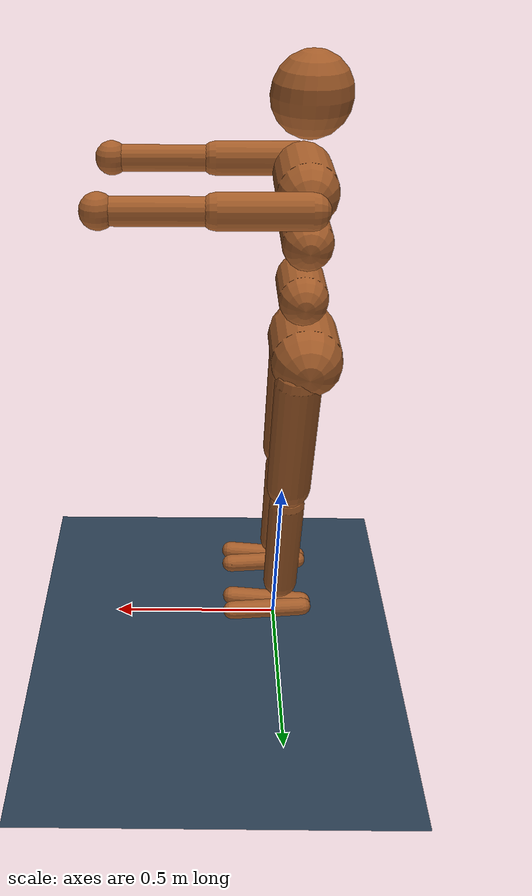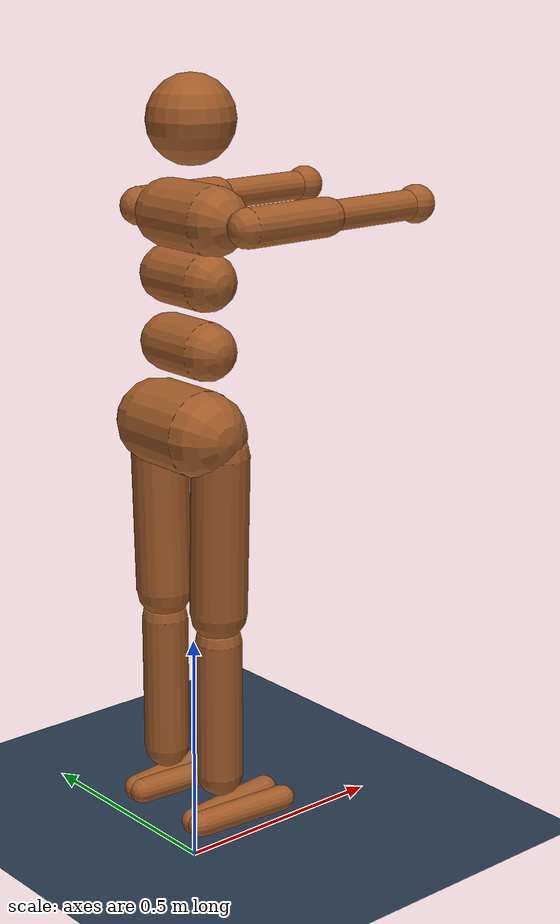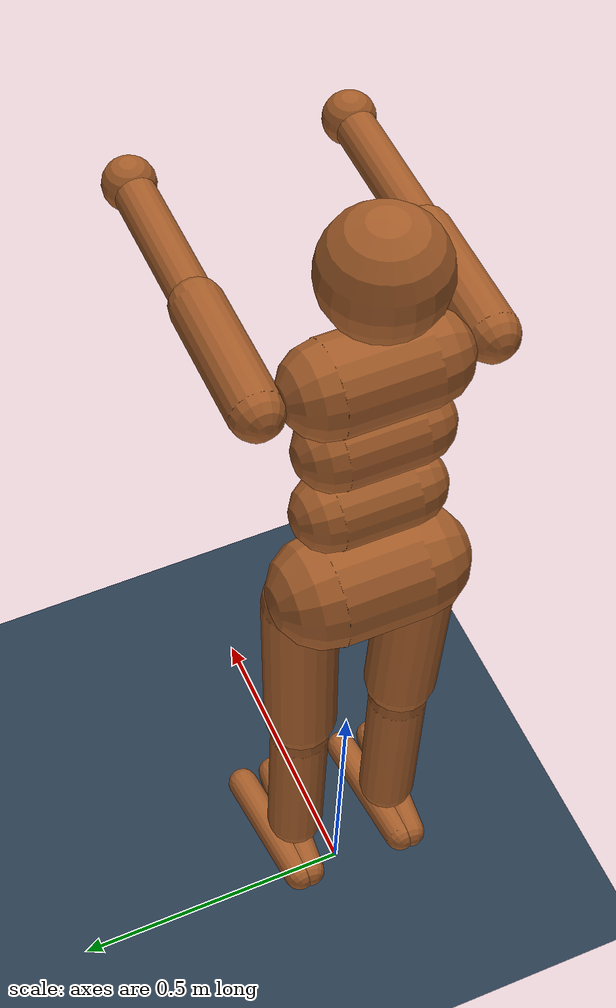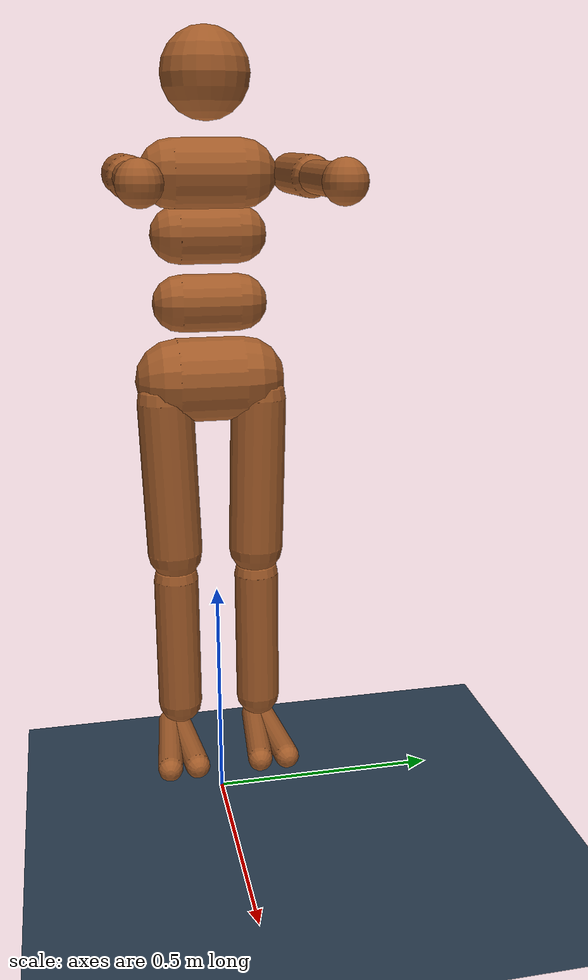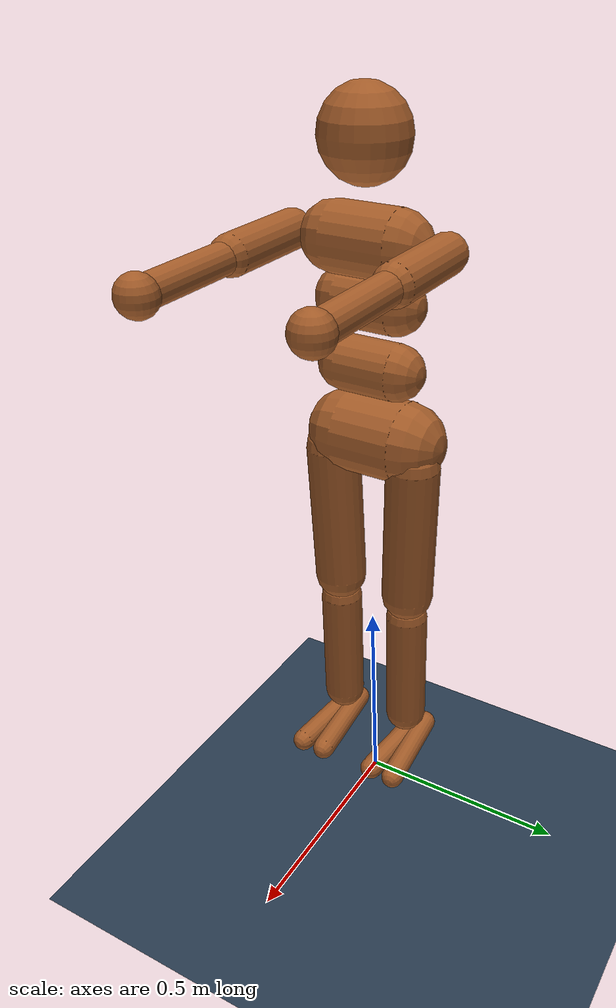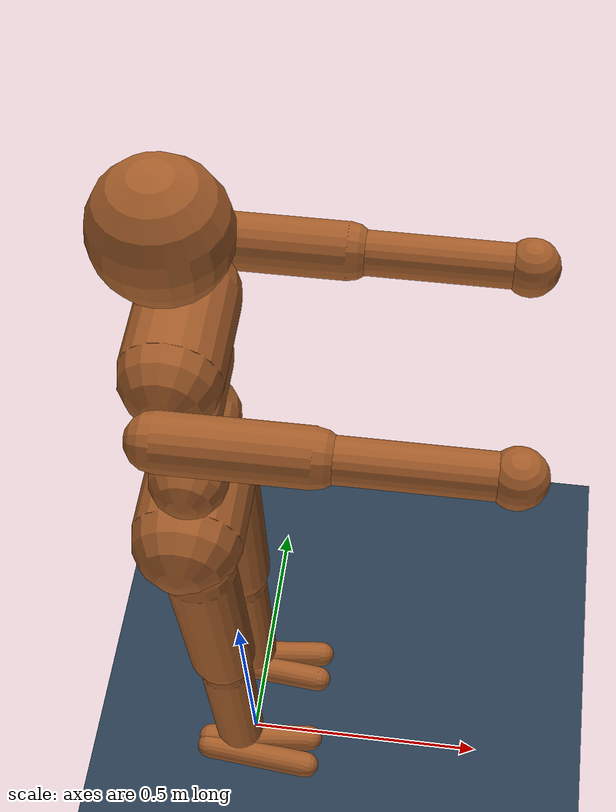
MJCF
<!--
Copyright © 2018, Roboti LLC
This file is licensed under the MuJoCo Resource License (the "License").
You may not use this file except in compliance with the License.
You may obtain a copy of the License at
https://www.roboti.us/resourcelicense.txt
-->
<mujoco model="Humanoid">

    <compiler inertiafromgeom="true" angle="degree"/>

    <default>
        <joint limited="true" damping="1" armature="0"/>
        <geom condim="1" material="matgeom"/>
        <motor ctrlrange="-.4 .4" ctrllimited="true"/>
    </default>

    <option timestep="0.005" iterations="50" tolerance="1e-10" solver="Newton" jacobian="dense" cone="pyramidal" gravity="0 0 0"/>

    <size nconmax="50" njmax="200" nstack="10000"/>

    <visual>
        <map force="0.1" zfar="30"/>
        <rgba haze="0.15 0.25 0.35 1"/>
        <quality shadowsize="2048"/>
        <global offwidth="800" offheight="800"/>
    </visual>

    <asset>
        <texture type="skybox" builtin="gradient" rgb1="0.3 0.5 0.7" rgb2="0 0 0" width="512" height="512"/>

        <texture name="texplane" type="2d" builtin="checker" rgb1=".2 .3 .4" rgb2=".1 0.15 0.2" width="512" height="512" mark="cross" markrgb=".8 .8 .8"/>

        <texture name="texgeom" type="cube" builtin="flat" mark="cross" width="127" height="1278"
            rgb1="0.8 0.6 0.4" rgb2="0.8 0.6 0.4" markrgb="1 1 1" random="0.01"/>

        <material name="matplane" reflectance="0.3" texture="texplane" texrepeat="1 1" texuniform="true"/>

        <material name="matgeom" texture="texgeom" texuniform="true" rgba="0.8 0.6 .4 1"/>
    </asset>

    <worldbody>
        <geom name="floor" pos="0 0 0" size="0 0 .25" type="plane" material="matplane" condim="3"/>
        <light directional="false" diffuse=".2 .2 .2" specular="0 0 0" pos="0 0 5" dir="0 0 -1" castshadow="false"/>
        <light mode="targetbodycom" target="torso" directional="false" diffuse=".8 .8 .8" specular="0.3 0.3 0.3" pos="0 0 4.0" dir="0 0 -1"/>

         <!-- body1：1、2、3 -->
        <body name="torso" pos="0 0 1.4" euler="0 0 0" >
            <freejoint name="root"/>
             <!-- 胶囊1 -->
            <geom name="torso1" type="capsule" fromto="0 -.07 0 0 .07 0"  size="0.07"/>
            <geom name="head" type="sphere" pos="0 0 .19" size=".09"/>
            <!-- 胶囊2-->
            <geom name="uwaist" type="capsule" fromto="-.01 -.06 -.12 -.01 .06 -.12" size="0.06"/>

             <!--body2： 胶囊3-->
            <body name="lwaist" pos="-.01 0 -0.260" quat="1.000 0 -0.002 0" >
                <geom name="lwaist" type="capsule" fromto="0 -.06 0 0 .06 0"  size="0.06" />
             <!-- body3：胶囊4-->
             <body name="pelvis" pos="0 0 -0.165" quat="1.000 0.0 -0.002 0" >
                    <geom name="butt" type="capsule" fromto="-.02 -.07 0 -.02 .07 0"  size="0.09" />
                    <!-- 右腿模型构建 -->
                    <body name="right_thigh" pos="0 -0.1 -0.04" >
                        <geom name="right_thigh1" type="capsule" fromto="0 0 0 0 0.01 -.34"  size="0.06" />
                        <body name="right_shin" pos="0 0.01 -0.403" >
                            <geom name="right_shin1" type="capsule" fromto="0 0 0 0 0 -.3"   size="0.049" />
                            <body name="right_foot" pos="0 0 -.39" >
                                <geom name="right_foot_cap1" type="capsule" fromto="-.07 -0.02 0 0.14 -0.04 0"  size="0.027" />
                                <geom name="right_foot_cap2" type="capsule" fromto="-.07 0 0 0.14  0.02 0"  size="0.027" />
                            </body>
                        </body>
                    </body>
                    <!-- 左腿模型构建 -->
                    <body name="left_thigh" pos="0 0.1 -0.04" >
                        <geom name="left_thigh1" type="capsule" fromto="0 0 0 0 -0.01 -.34"  size="0.06" />
                        <body name="left_shin" pos="0 -0.01 -0.403" >
                            <geom name="left_shin1" type="capsule" fromto="0 0 0 0 0 -.3"   size="0.049" />
                            <body name="left_foot" pos="0 0 -.39" >
                                <geom name="left_foot_cap1" type="capsule" fromto="-.07 0.02 0 0.14 0.04 0"  size="0.027" />
                                <geom name="left_foot_cap2" type="capsule" fromto="-.07 0 0 0.14  -0.02 0"  size="0.027" />
                            </body>
                        </body>
                    </body>

                </body>   <!--对应body3 -->
            </body>       <!--对应body2 -->

              <!-- 右臂模型构建 -->
            <body name="right_upper_arm" pos="0 -0.17 0" >

                <joint name="right_shoulder" type="ball" pos="0 0 0" stiffness="1" armature="0.0068" />

                <geom name="right_uarm1" type="capsule" fromto="0 0 0 0.20 0 0"  size="0.04 0.16" />

                <body name="right_lower_arm" pos="0.2 0 0" >
                    <joint name="right_elbow" type="hinge" pos="0 0 0" axis="0 -1 0" range="-90 50"  stiffness="0" armature="0.0028" />
                    <geom name="right_larm" type="capsule" fromto="0.0 0.0 0.0 .25 .0 .0"  size="0.031" />
                    <geom name="right_hand" type="sphere" pos=".25 .0 .0"  size="0.04"/>
                </body>
            </body>

             <!-- 左臂模型构建 -->>

             <body name="left_upper_arm" pos="0 0.17 0" >

                <joint name="left_shoulder" type="ball" pos="0 0 0" stiffness="1" armature="0.0068" />
                <geom name="left_uarm1" type="capsule" fromto="0 0 0 0.20 0 0"  size="0.04 0.16" />
                <body name="left_lower_arm"  pos="0.2 0 0" >
                    <joint name="left_elbow" type="hinge" pos="0 0 0" axis="0 -1 0" range="-90 50" stiffness="0" armature="0.0028" />
                    <geom name="left_larm" type="capsule" fromto="0.0 0.0 0.0 .25 .0 .0"  size="0.031" />
                    <geom name="left_hand" type="sphere" pos=".25 .0 .0"  size="0.04"/>
                </body>
            </body>

        </body>  <!--对应body1 -->
    </worldbody>

    <actuator>
    </actuator>

</mujoco>
